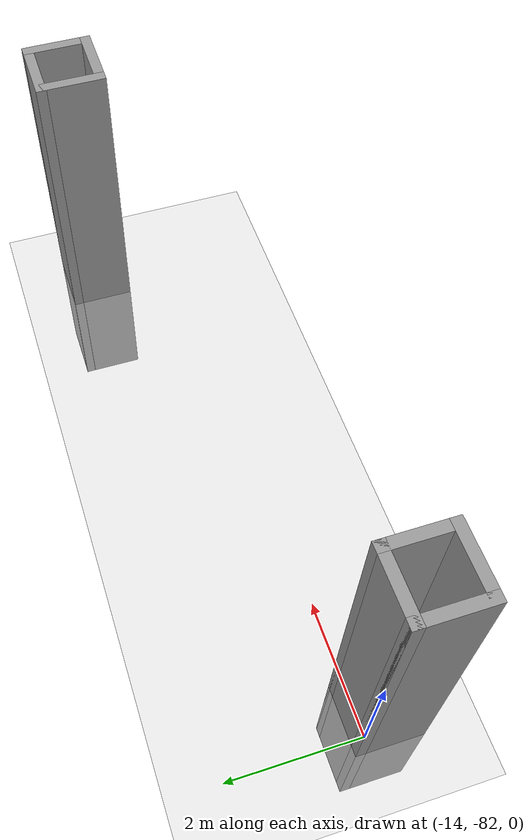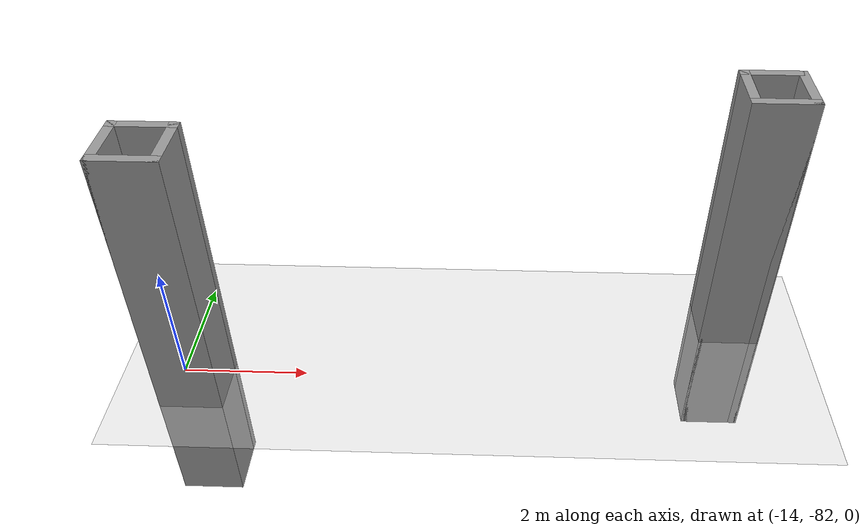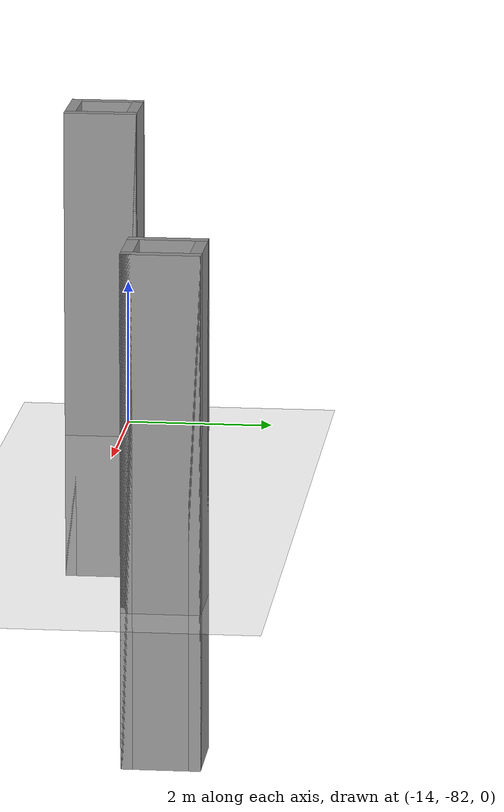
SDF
<sdf version="1.6">
 <world name="default">
  <model name="ground_plane">
   <static>1</static>
   <link name="link">
    <collision name="collision">
     <geometry><plane><normal>0 0 1</normal><size>320 320</size></plane></geometry>
     <surface>
      <contact><collide_bitmask>65535</collide_bitmask></contact>
      <friction><ode><mu>100</mu><mu2>50</mu2></ode></friction>
     </surface>
    </collision>
    <visual name="visual">
     <cast_shadows>0</cast_shadows>
     <geometry><plane><normal>0 0 1</normal><size>320 320</size></plane></geometry>
     <material>
      <script><uri>file://media/materials/scripts/gazebo.material</uri><name>Gazebo/Grey</name></script>
     </material>
    </visual>
   </link>
  </model>
  <model name="box_1mx1m_12">
   <pose>-13.7007 -82.2928 0 0 -0 0</pose>
   <link name="Wall_10">
    <collision name="Wall_10_Collision">
     <geometry><box><size>1 0.15 6.555</size></box></geometry>
     <pose>0 0 1.25 0 -0 0</pose>
    </collision>
    <visual name="Wall_10_Visual">
     <pose>0 0 1.25 0 -0 0</pose>
     <geometry><box><size>1 0.15 6.555</size></box></geometry>
     <material>
      <script><uri>file://media/materials/scripts/gazebo.material</uri><name>Gazebo/Grey</name></script>
      <ambient>1 1 1 1</ambient>
     </material>
     <meta><layer>0</layer></meta>
    </visual>
    <pose>-0.425 0 0 0 -0 -1.5708</pose>
   </link>
   <link name="Wall_11">
    <collision name="Wall_11_Collision">
     <geometry><box><size>1 0.15 6.555</size></box></geometry>
     <pose>0 0 1.25 0 -0 0</pose>
    </collision>
    <visual name="Wall_11_Visual">
     <pose>0 0 1.25 0 -0 0</pose>
     <geometry><box><size>1 0.15 6.555</size></box></geometry>
     <material>
      <script><uri>file://media/materials/scripts/gazebo.material</uri><name>Gazebo/Grey</name></script>
      <ambient>1 1 1 1</ambient>
     </material>
     <meta><layer>0</layer></meta>
    </visual>
    <pose>0 -0.425 0 0 -0 0</pose>
   </link>
   <link name="Wall_12">
    <collision name="Wall_12_Collision">
     <geometry><box><size>1 0.15 6.555</size></box></geometry>
     <pose>0 0 1.25 0 -0 0</pose>
    </collision>
    <visual name="Wall_12_Visual">
     <pose>0 0 1.25 0 -0 0</pose>
     <geometry><box><size>1 0.15 6.555</size></box></geometry>
     <material>
      <script><uri>file://media/materials/scripts/gazebo.material</uri><name>Gazebo/Grey</name></script>
      <ambient>1 1 1 1</ambient>
     </material>
     <meta><layer>0</layer></meta>
    </visual>
    <pose>0.425 0 0 0 -0 1.5708</pose>
   </link>
   <link name="Wall_13">
    <collision name="Wall_13_Collision">
     <geometry><box><size>1 0.15 6.555</size></box></geometry>
     <pose>0 0 1.25 0 -0 0</pose>
    </collision>
    <visual name="Wall_13_Visual">
     <pose>0 0 1.25 0 -0 0</pose>
     <geometry><box><size>1 0.15 6.555</size></box></geometry>
     <material>
      <script><uri>file://media/materials/scripts/gazebo.material</uri><name>Gazebo/Grey</name></script>
      <ambient>1 1 1 1</ambient>
     </material>
     <meta><layer>0</layer></meta>
    </visual>
    <pose>0 0.425 0 0 -0 3.14159</pose>
   </link>
   <static>1</static>
  </model>
  <model name="box_1mx1m_31">
   <pose>-4.96268 -80.5148 0 0 -0 0</pose>
   <link name="Wall_10">
    <collision name="Wall_10_Collision">
     <geometry><box><size>1 0.15 6.555</size></box></geometry>
     <pose>0 0 1.25 0 -0 0</pose>
    </collision>
    <visual name="Wall_10_Visual">
     <pose>0 0 1.25 0 -0 0</pose>
     <geometry><box><size>1 0.15 6.555</size></box></geometry>
     <material>
      <script><uri>file://media/materials/scripts/gazebo.material</uri><name>Gazebo/Grey</name></script>
      <ambient>1 1 1 1</ambient>
     </material>
     <meta><layer>0</layer></meta>
    </visual>
    <pose>-0.425 0 0 0 -0 -1.5708</pose>
   </link>
   <link name="Wall_11">
    <collision name="Wall_11_Collision">
     <geometry><box><size>1 0.15 6.555</size></box></geometry>
     <pose>0 0 1.25 0 -0 0</pose>
    </collision>
    <visual name="Wall_11_Visual">
     <pose>0 0 1.25 0 -0 0</pose>
     <geometry><box><size>1 0.15 6.555</size></box></geometry>
     <material>
      <script><uri>file://media/materials/scripts/gazebo.material</uri><name>Gazebo/Grey</name></script>
      <ambient>1 1 1 1</ambient>
     </material>
     <meta><layer>0</layer></meta>
    </visual>
    <pose>0 -0.425 0 0 -0 0</pose>
   </link>
   <link name="Wall_12">
    <collision name="Wall_12_Collision">
     <geometry><box><size>1 0.15 6.555</size></box></geometry>
     <pose>0 0 1.25 0 -0 0</pose>
    </collision>
    <visual name="Wall_12_Visual">
     <pose>0 0 1.25 0 -0 0</pose>
     <geometry><box><size>1 0.15 6.555</size></box></geometry>
     <material>
      <script><uri>file://media/materials/scripts/gazebo.material</uri><name>Gazebo/Grey</name></script>
      <ambient>1 1 1 1</ambient>
     </material>
     <meta><layer>0</layer></meta>
    </visual>
    <pose>0.425 0 0 0 -0 1.5708</pose>
   </link>
   <link name="Wall_13">
    <collision name="Wall_13_Collision">
     <geometry><box><size>1 0.15 6.555</size></box></geometry>
     <pose>0 0 1.25 0 -0 0</pose>
    </collision>
    <visual name="Wall_13_Visual">
     <pose>0 0 1.25 0 -0 0</pose>
     <geometry><box><size>1 0.15 6.555</size></box></geometry>
     <material>
      <script><uri>file://media/materials/scripts/gazebo.material</uri><name>Gazebo/Grey</name></script>
      <ambient>1 1 1 1</ambient>
     </material>
     <meta><layer>0</layer></meta>
    </visual>
    <pose>0 0.425 0 0 -0 3.14159</pose>
   </link>
   <static>1</static>
  </model>
 </world>
</sdf>
